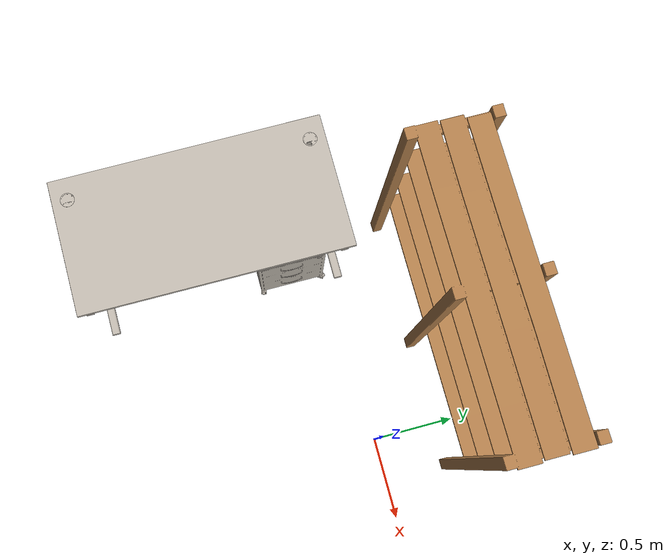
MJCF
<mujoco>
  <default>
    <default class="visual">
      <geom group="2" type="mesh" contype="0" conaffinity="0"/>
    </default>
    <default class="collision">
      <geom group="3" type="mesh"/>
    </default>
  </default>
                <asset>
                    <texture name="static_Object_15_0_tex" type="2d" file="textures/static_Object_15_0.png"/>
    <texture name="static_Object_12_1_tex" type="2d" file="textures/static_Object_12_1.png"/>
    <texture name="static_Object_9_2_tex" type="2d" file="textures/static_Object_9_2.png"/>
    <texture name="static_Object_6_3_tex" type="2d" file="textures/static_Object_6_3.png"/>
    <material name="static_Object_15_0_mat" texture="static_Object_15_0_tex" texuniform="true" rgba="1 1 1 1"/>
    <material name="static_Object_12_1_mat" texture="static_Object_12_1_tex" texuniform="true" rgba="1 1 1 1"/>
    <material name="static_Object_9_2_mat" texture="static_Object_9_2_tex" texuniform="true" rgba="1 1 1 1"/>
    <material name="static_Object_6_3_mat" texture="static_Object_6_3_tex" texuniform="true" rgba="1 1 1 1"/>
    <mesh name="static_Object_15_0_mesh" file="room_assets/static_Object_15_0.obj" scale="1.000000 1.000000 1.000000"/>
    <mesh name="static_Object_12_1_mesh" file="room_assets/static_Object_12_1.obj" scale="1.000000 1.000000 1.000000"/>
    <mesh name="static_Object_9_2_mesh" file="room_assets/static_Object_9_2.obj" scale="1.000000 1.000000 1.000000"/>
    <mesh name="static_Object_6_3_mesh" file="room_assets/static_Object_6_3.obj" scale="1.000000 1.000000 1.000000"/>
    <texture type="2d" name="shelf" file="simple_shelf/simple_shelf.png"/>
    <material name="wooden_storage_shelf.002" texture="shelf" specular="0.5" shininess="0.25"/>
    <mesh file="simple_shelf/simple_shelf.obj"/>
    <mesh file="simple_shelf/simple_shelf_collision_0.obj"/>
    <mesh file="simple_shelf/simple_shelf_collision_1.obj"/>
    <mesh file="simple_shelf/simple_shelf_collision_2.obj"/>
    <mesh file="simple_shelf/simple_shelf_collision_3.obj"/>
    <mesh file="simple_shelf/simple_shelf_collision_4.obj"/>
    <mesh file="simple_shelf/simple_shelf_collision_5.obj"/>
    <mesh file="simple_shelf/simple_shelf_collision_6.obj"/>
    <mesh file="simple_shelf/simple_shelf_collision_7.obj"/>
    <mesh file="simple_shelf/simple_shelf_collision_8.obj"/>
    <mesh file="simple_shelf/simple_shelf_collision_9.obj"/>
    <mesh file="simple_shelf/simple_shelf_collision_10.obj"/>
    <mesh file="simple_shelf/simple_shelf_collision_11.obj"/>
    <mesh file="simple_shelf/simple_shelf_collision_12.obj"/>
    <mesh file="simple_shelf/simple_shelf_collision_13.obj"/>
    <mesh file="simple_shelf/simple_shelf_collision_14.obj"/>
    <mesh file="simple_shelf/simple_shelf_collision_15.obj"/>
    <mesh file="simple_shelf/simple_shelf_collision_16.obj"/>
    <mesh file="simple_shelf/simple_shelf_collision_17.obj"/>
    <mesh file="simple_shelf/simple_shelf_collision_18.obj"/>
    <mesh file="simple_shelf/simple_shelf_collision_19.obj"/>
    <mesh file="simple_shelf/simple_shelf_collision_20.obj"/>
    <mesh file="simple_shelf/simple_shelf_collision_21.obj"/>
    <mesh file="simple_shelf/simple_shelf_collision_22.obj"/>
    <mesh file="simple_shelf/simple_shelf_collision_23.obj"/>
    <mesh file="simple_shelf/simple_shelf_collision_24.obj"/>
    <mesh file="simple_shelf/simple_shelf_collision_25.obj"/>
    <mesh file="simple_shelf/simple_shelf_collision_26.obj"/>
    <mesh file="simple_shelf/simple_shelf_collision_27.obj"/>
    <mesh file="simple_shelf/simple_shelf_collision_28.obj"/>
    <mesh file="simple_shelf/simple_shelf_collision_29.obj"/>
    <mesh file="simple_shelf/simple_shelf_collision_30.obj"/>
    <mesh file="simple_shelf/simple_shelf_collision_31.obj"/>
    <mesh file="simple_shelf/simple_shelf_collision_32.obj"/>
    <mesh file="simple_shelf/simple_shelf_collision_33.obj"/>
    <mesh file="simple_shelf/simple_shelf_collision_34.obj"/>
    <mesh file="simple_shelf/simple_shelf_collision_35.obj"/>
    <mesh file="simple_shelf/simple_shelf_collision_36.obj"/>
    <mesh file="simple_shelf/simple_shelf_collision_37.obj"/>
    <mesh file="simple_shelf/simple_shelf_collision_38.obj"/>
    <mesh file="simple_shelf/simple_shelf_collision_39.obj"/>
    <mesh file="simple_shelf/simple_shelf_collision_40.obj"/>
    <mesh file="simple_shelf/simple_shelf_collision_41.obj"/>
    <mesh file="simple_shelf/simple_shelf_collision_42.obj"/>
    <mesh file="simple_shelf/simple_shelf_collision_43.obj"/>
    <mesh file="simple_shelf/simple_shelf_collision_44.obj"/>
    <mesh file="simple_shelf/simple_shelf_collision_45.obj"/>
    <mesh file="simple_shelf/simple_shelf_collision_46.obj"/>
    <mesh file="simple_shelf/simple_shelf_collision_47.obj"/>
    <mesh file="simple_shelf/simple_shelf_collision_48.obj"/>
    <mesh file="simple_shelf/simple_shelf_collision_49.obj"/>
    <mesh file="simple_shelf/simple_shelf_collision_50.obj"/>
    <mesh file="simple_shelf/simple_shelf_collision_51.obj"/>
    <mesh file="simple_shelf/simple_shelf_collision_52.obj"/>
    <mesh file="simple_shelf/simple_shelf_collision_53.obj"/>
    <mesh file="simple_shelf/simple_shelf_collision_54.obj"/>
    <mesh file="simple_shelf/simple_shelf_collision_55.obj"/>
    <mesh file="simple_shelf/simple_shelf_collision_56.obj"/>
    <mesh file="simple_shelf/simple_shelf_collision_57.obj"/>
    <mesh file="simple_shelf/simple_shelf_collision_58.obj"/>
    <mesh file="simple_shelf/simple_shelf_collision_59.obj"/>
                </asset>
                <worldbody>
                    <body name="room_baselink">
                    <geom name="static_Object_15_0" type="mesh" mesh="static_Object_15_0_mesh" pos="-1.390242 -0.781290 0.000034" quat="0.500000 0.500000 0.500000 0.500000" material="static_Object_15_0_mat"/>
    <geom name="static_Object_12_1" type="mesh" mesh="static_Object_12_1_mesh" pos="-1.390242 -0.781290 0.000034" quat="0.500000 0.500000 0.500000 0.500000" material="static_Object_12_1_mat"/>
    <geom name="static_Object_9_2" type="mesh" mesh="static_Object_9_2_mesh" pos="-1.390242 -0.781290 0.000034" quat="0.500000 0.500000 0.500000 0.500000" material="static_Object_9_2_mat"/>
    <geom name="static_Object_6_3" type="mesh" mesh="static_Object_6_3_mesh" pos="-1.390242 -0.781290 0.000034" quat="0.500000 0.500000 0.500000 0.500000" material="static_Object_6_3_mat"/>
                    </body>
                    <body name="simple_shelf" pos="-0.5 0.55 1.02">
                        <geom material="wooden_storage_shelf.002" mesh="simple_shelf" class="visual"/>
                        <geom mesh="simple_shelf_collision_0" rgba="0.9465142020549059 0.3542302544676642 0.8305075606101542 1" class="collision"/>
                        <geom mesh="simple_shelf_collision_1" rgba="0.29282439578515473 0.8947418332315805 0.3570530431042308 1" class="collision"/>
                        <geom mesh="simple_shelf_collision_2" rgba="0.5378955032048196 0.638527677853547 0.2743076998843579 1" class="collision"/>
                        <geom mesh="simple_shelf_collision_3" rgba="0.11865925522646326 0.5402365742954293 0.16448351036473086 1" class="collision"/>
                        <geom mesh="simple_shelf_collision_4" rgba="0.5800688413390339 0.7301514724459173 0.6146666646932608 1" class="collision"/>
                        <geom mesh="simple_shelf_collision_5" rgba="0.18942547381532693 0.8043832245201007 0.8400388865026979 1" class="collision"/>
                        <geom mesh="simple_shelf_collision_6" rgba="0.6498869700269216 0.6440868759575167 0.9520793234261771 1" class="collision"/>
                        <geom mesh="simple_shelf_collision_7" rgba="0.42408496285962993 0.5152059030408688 0.03307467685074528 1" class="collision"/>
                        <geom mesh="simple_shelf_collision_8" rgba="0.9848654981160533 0.9944172318021144 0.2573879640743252 1" class="collision"/>
                        <geom mesh="simple_shelf_collision_9" rgba="0.4534317228725253 0.4239865706096181 0.5226745402850512 1" class="collision"/>
                        <geom mesh="simple_shelf_collision_10" rgba="0.3189690917511593 0.5789753608946714 0.9742736752891648 1" class="collision"/>
                        <geom mesh="simple_shelf_collision_11" rgba="0.6851284695290476 0.044067128847589676 0.8168175575572676 1" class="collision"/>
                        <geom mesh="simple_shelf_collision_12" rgba="0.36697915326906194 0.07752759924238095 0.5857050314681188 1" class="collision"/>
                        <geom mesh="simple_shelf_collision_13" rgba="0.7382312776527452 0.27451193968592336 0.9665716073307177 1" class="collision"/>
                        <geom mesh="simple_shelf_collision_14" rgba="0.5960338671721783 0.10810746261611492 0.7188028381825434 1" class="collision"/>
                        <geom mesh="simple_shelf_collision_15" rgba="0.9615422603906174 0.3160462575917091 0.6323955142354389 1" class="collision"/>
                        <geom mesh="simple_shelf_collision_16" rgba="0.7556304543313299 0.9729959203310112 0.6678952194515262 1" class="collision"/>
                        <geom mesh="simple_shelf_collision_17" rgba="0.4243058031307675 0.4118471968652846 0.7939793948217215 1" class="collision"/>
                        <geom mesh="simple_shelf_collision_18" rgba="0.32241355626118906 0.18264839262965238 0.25372306661527855 1" class="collision"/>
                        <geom mesh="simple_shelf_collision_19" rgba="0.10018784655612334 0.7652989206028525 0.6374268273890071 1" class="collision"/>
                        <geom mesh="simple_shelf_collision_20" rgba="0.30958787637258456 0.3596973048293328 0.20005214414795647 1" class="collision"/>
                        <geom mesh="simple_shelf_collision_21" rgba="0.2923003406640785 0.5640633000760014 0.40214766308678096 1" class="collision"/>
                        <geom mesh="simple_shelf_collision_22" rgba="0.8984358807603917 0.44817812584589545 0.9489214015736157 1" class="collision"/>
                        <geom mesh="simple_shelf_collision_23" rgba="0.9629076849157927 0.4594400967761658 0.8544665558141922 1" class="collision"/>
                        <geom mesh="simple_shelf_collision_24" rgba="0.798493373091598 0.09939281786750687 0.24519095437905625 1" class="collision"/>
                        <geom mesh="simple_shelf_collision_25" rgba="0.8762722054184708 0.37147836919256083 0.49738291643694543 1" class="collision"/>
                        <geom mesh="simple_shelf_collision_26" rgba="0.1874284825949265 0.35692235447800125 0.8828827812215584 1" class="collision"/>
                        <geom mesh="simple_shelf_collision_27" rgba="0.7573591994798541 0.47515969494079 0.3175911999076365 1" class="collision"/>
                        <geom mesh="simple_shelf_collision_28" rgba="0.8880481092079944 0.44471094660970856 0.24641108596737193 1" class="collision"/>
                        <geom mesh="simple_shelf_collision_29" rgba="0.5518887564020024 0.648896145068915 0.6625865572797033 1" class="collision"/>
                        <geom mesh="simple_shelf_collision_30" rgba="0.8991184184525881 0.7400909821593622 0.214185336316165 1" class="collision"/>
                        <geom mesh="simple_shelf_collision_31" rgba="0.9491321985947088 0.42483907520797537 0.6471481499536924 1" class="collision"/>
                        <geom mesh="simple_shelf_collision_32" rgba="0.7578928617985287 0.35961402497210293 0.9492520062168819 1" class="collision"/>
                        <geom mesh="simple_shelf_collision_33" rgba="0.4003200106487461 0.9926700979159766 0.9242121870933622 1" class="collision"/>
                        <geom mesh="simple_shelf_collision_34" rgba="0.7385377020049431 0.8420050750758847 0.4026025539899918 1" class="collision"/>
                        <geom mesh="simple_shelf_collision_35" rgba="0.5333421168408806 0.5802985732267312 0.981998767183391 1" class="collision"/>
                        <geom mesh="simple_shelf_collision_36" rgba="0.016455384453471833 0.10527610524256903 0.12166031337075744 1" class="collision"/>
                        <geom mesh="simple_shelf_collision_37" rgba="0.6560727037469481 0.0642873681657894 0.23011555142122675 1" class="collision"/>
                        <geom mesh="simple_shelf_collision_38" rgba="0.7024871773176171 0.1234852488367747 0.8415395510676283 1" class="collision"/>
                        <geom mesh="simple_shelf_collision_39" rgba="0.9989247025046322 0.1363262571848437 0.7667184908495196 1" class="collision"/>
                        <geom mesh="simple_shelf_collision_40" rgba="0.5863618907484706 0.5711752168784087 0.40225985317998747 1" class="collision"/>
                        <geom mesh="simple_shelf_collision_41" rgba="0.18528131617698218 0.31567434660661464 0.9893533591413962 1" class="collision"/>
                        <geom mesh="simple_shelf_collision_42" rgba="0.7517521068739821 0.44038927213764256 0.02058091102164361 1" class="collision"/>
                        <geom mesh="simple_shelf_collision_43" rgba="0.15047503879966584 0.055481751949176594 0.4441142307954934 1" class="collision"/>
                        <geom mesh="simple_shelf_collision_44" rgba="0.10592350021398955 0.7658125383048453 0.4509787041934137 1" class="collision"/>
                        <geom mesh="simple_shelf_collision_45" rgba="0.8859760503855885 0.9529804613105017 0.2398931388165958 1" class="collision"/>
                        <geom mesh="simple_shelf_collision_46" rgba="0.08620150263168425 0.6200960804706104 0.012072532559716742 1" class="collision"/>
                        <geom mesh="simple_shelf_collision_47" rgba="0.7626182721811308 0.6243433959301214 0.8013354566426919 1" class="collision"/>
                        <geom mesh="simple_shelf_collision_48" rgba="0.2051879332658172 0.9773859808193434 0.4635225920950239 1" class="collision"/>
                        <geom mesh="simple_shelf_collision_49" rgba="0.7237894185316877 0.3553005645287348 0.9984511910020326 1" class="collision"/>
                        <geom mesh="simple_shelf_collision_50" rgba="0.9523603174223666 0.6769546182919585 0.6698714245472415 1" class="collision"/>
                        <geom mesh="simple_shelf_collision_51" rgba="0.47241501532213603 0.08636225610215365 0.6788995113815148 1" class="collision"/>
                        <geom mesh="simple_shelf_collision_52" rgba="0.7688800871474006 0.5050472141034822 0.10484760966879514 1" class="collision"/>
                        <geom mesh="simple_shelf_collision_53" rgba="0.6709781312889423 0.06060704416765328 0.4708772589851078 1" class="collision"/>
                        <geom mesh="simple_shelf_collision_54" rgba="0.11712626374785262 0.23014717770498483 0.08138264029691811 1" class="collision"/>
                        <geom mesh="simple_shelf_collision_55" rgba="0.8551066498753158 0.11225739998296247 0.3205800203734026 1" class="collision"/>
                        <geom mesh="simple_shelf_collision_56" rgba="0.8651685265315262 0.9879268678597405 0.5236055435908513 1" class="collision"/>
                        <geom mesh="simple_shelf_collision_57" rgba="0.8726399095670208 0.071356216616424 0.9523554291034662 1" class="collision"/>
                        <geom mesh="simple_shelf_collision_58" rgba="0.13526825187280034 0.9693011948670417 0.5688745809505223 1" class="collision"/>
                        <geom mesh="simple_shelf_collision_59" rgba="0.9819581951456254 0.07949612824897445 0.9121554937379115 1" class="collision"/>
                      </body>
                </worldbody>
                </mujoco>
